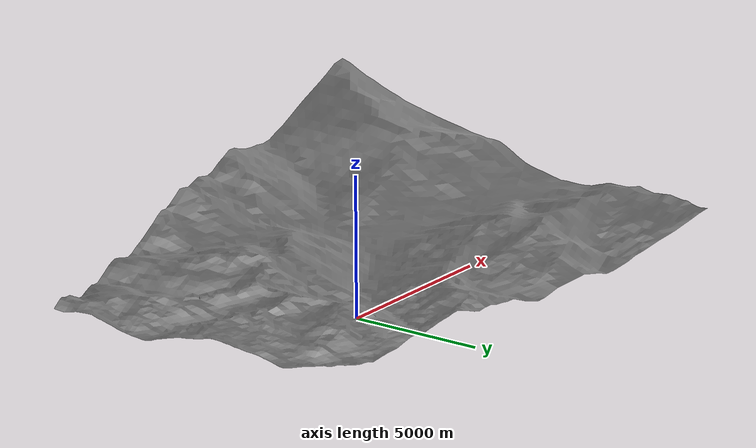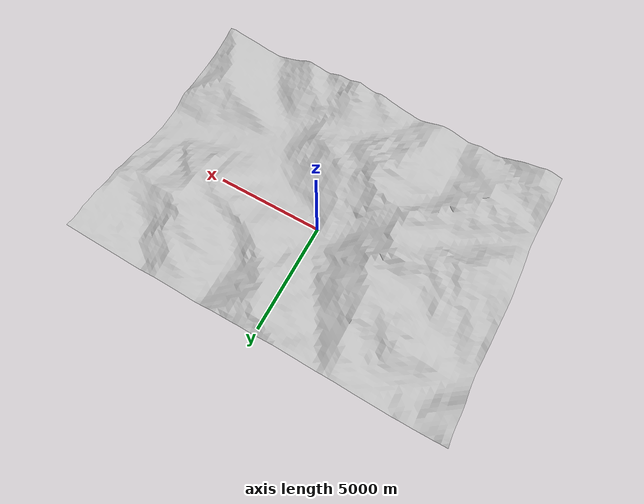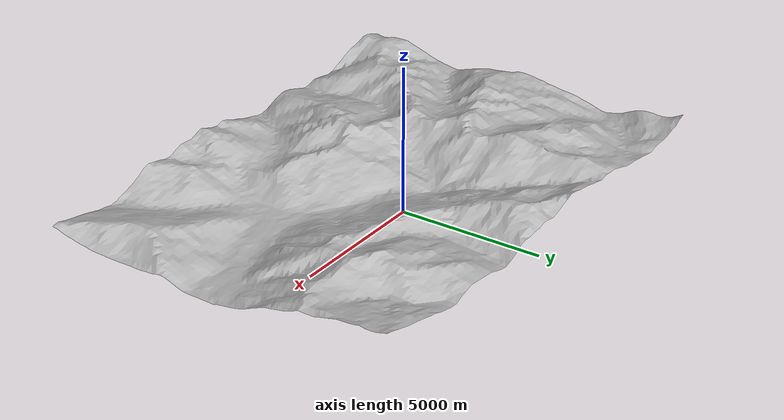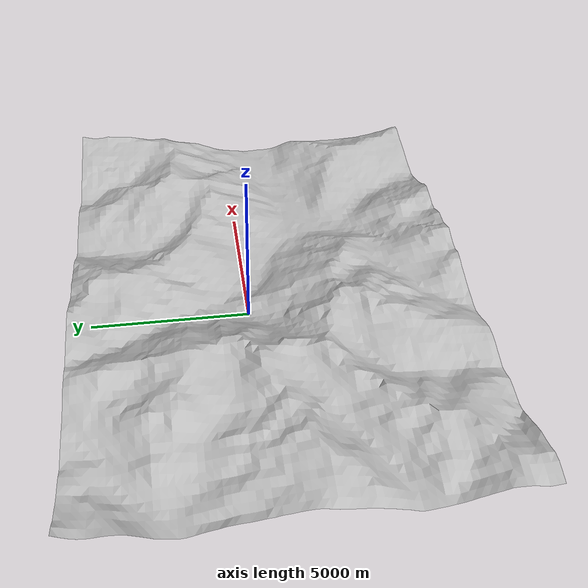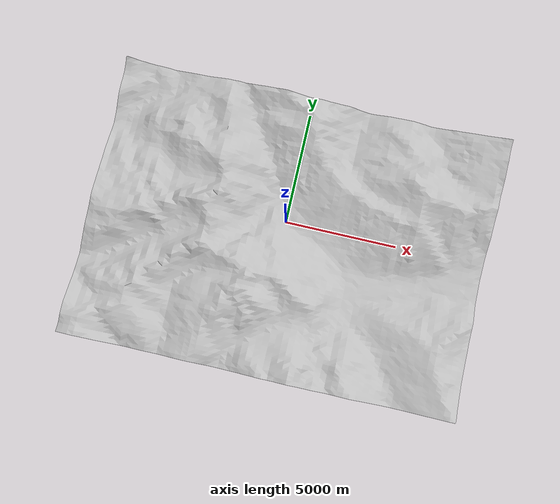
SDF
<?xml version="1.0" ?>
<sdf version="1.5">
  <model name="terrain_1">
    <pose>0 0 0 0 0 0</pose>
    <static>true</static>
    <link name="body">
      <visual name="visual">
        <transparency>0</transparency>
        <geometry>
          <mesh>
            <uri>media/untitled.dae</uri>
            <scale>1 1 1</scale>
          </mesh>
        </geometry>

      </visual>
      <collision name="collision">
        <geometry>
          <mesh>
            <uri>media/untitled.dae</uri>

            <scale>1 1 1</scale>
          </mesh>

        </geometry>
      </collision>
    </link>

  </model>
</sdf>
